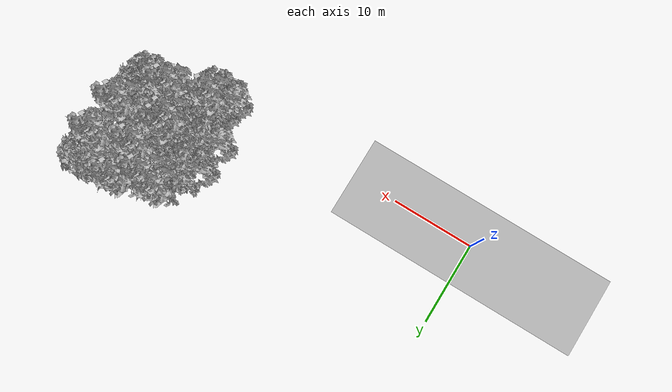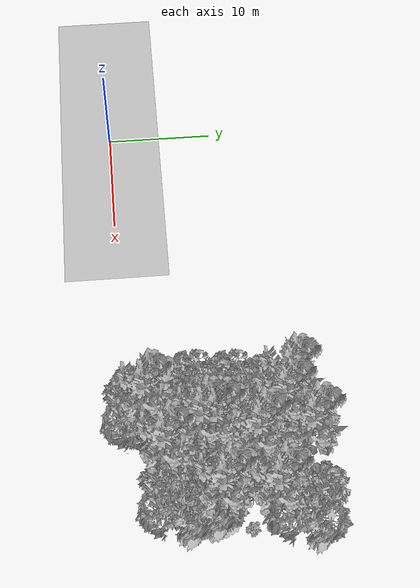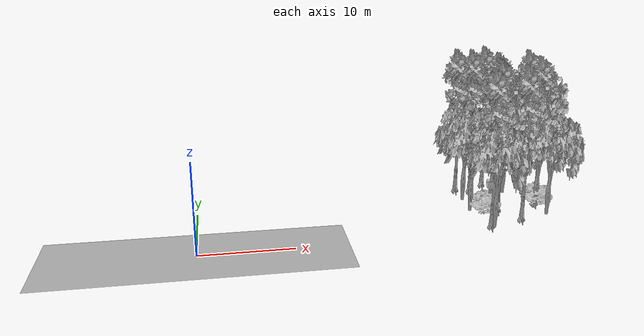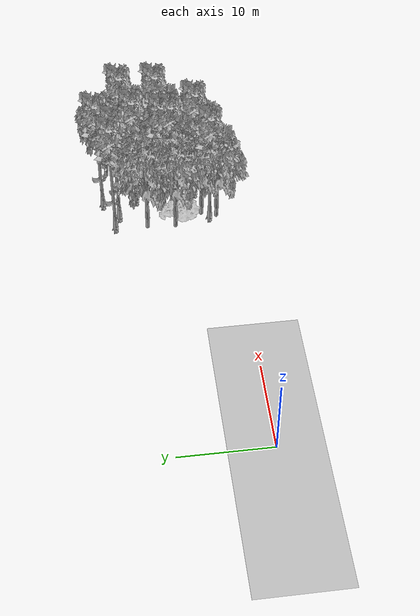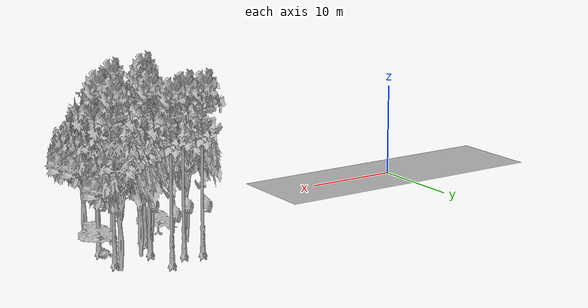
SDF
<sdf version="1.7">
 <world name="default">
  <model name="ground_plane">
   <static>1</static>
   <link name="link">
    <collision name="collision">
     <pose>-50 0 0 0 -0 0</pose>
     <geometry><plane><normal>0 0 1</normal><size>100 100</size></plane></geometry>
     <surface><contact><ode><min_depth>0.01</min_depth><max_vel>0</max_vel></ode></contact></surface>
    </collision>
    <visual name="grass">
     <cast_shadows>0</cast_shadows>
     <geometry>
      <mesh>
       <scale>0.5814285714285714 0.18142857142857144 0.1</scale>
       <uri>file://grass_plane/meshes/grass_plane.dae</uri>
      </mesh>
     </geometry>
    </visual>
   </link>
  </model>
  <model name="Tree 55">
   <static>1</static>
   <pose>38.76825862329257 6.130242010541679 0 1.57079 -0 0</pose>
   <link name="link">
    <collision name="collision">
     <geometry><mesh><scale>3.5 5 3.5</scale><uri>model://tree_2/meshes/tree_2.obj</uri></mesh></geometry>
    </collision>
    <visual name="visual">
     <geometry><mesh><scale>3.5 5 3.5</scale><uri>model://tree_2/meshes/tree_2.obj</uri></mesh></geometry>
    </visual>
   </link>
  </model>
  <model name="Tree 56">
   <static>1</static>
   <pose>39.85740417021182 11.655379444632342 0 1.57079 -0 0</pose>
   <link name="link">
    <collision name="collision">
     <geometry><mesh><scale>3.5 5 3.5</scale><uri>model://tree_9/meshes/tree_9.obj</uri></mesh></geometry>
    </collision>
    <visual name="visual">
     <geometry><mesh><scale>3.5 5 3.5</scale><uri>model://tree_9/meshes/tree_9.obj</uri></mesh></geometry>
    </visual>
   </link>
  </model>
  <model name="Tree 134">
   <static>1</static>
   <pose>32.0561835513881 1.6915817885447346 0 1.57079 -0 0</pose>
   <link name="link">
    <collision name="collision">
     <geometry><mesh><scale>3.5 5 3.5</scale><uri>model://tree_2/meshes/tree_2.obj</uri></mesh></geometry>
    </collision>
    <visual name="visual">
     <geometry><mesh><scale>3.5 5 3.5</scale><uri>model://tree_2/meshes/tree_2.obj</uri></mesh></geometry>
    </visual>
   </link>
  </model>
  <model name="Tree 139">
   <static>1</static>
   <pose>33.291494305657366 12.791173688180784 0 1.57079 -0 0</pose>
   <link name="link">
    <collision name="collision">
     <geometry><mesh><scale>3.5 5 3.5</scale><uri>model://tree_9/meshes/tree_9.obj</uri></mesh></geometry>
    </collision>
    <visual name="visual">
     <geometry><mesh><scale>3.5 5 3.5</scale><uri>model://tree_9/meshes/tree_9.obj</uri></mesh></geometry>
    </visual>
   </link>
  </model>
  <model name="Tree 142">
   <static>1</static>
   <pose>34.456195218511766 6.580893161147376 0 1.57079 -0 0</pose>
   <link name="link">
    <collision name="collision">
     <geometry><mesh><scale>3.5 5 3.5</scale><uri>model://tree_9/meshes/tree_9.obj</uri></mesh></geometry>
    </collision>
    <visual name="visual">
     <geometry><mesh><scale>3.5 5 3.5</scale><uri>model://tree_9/meshes/tree_9.obj</uri></mesh></geometry>
    </visual>
   </link>
  </model>
  <model name="Tree 144">
   <static>1</static>
   <pose>35.52596002934823 14.552836260975237 0 1.57079 -0 0</pose>
   <link name="link">
    <collision name="collision">
     <geometry><mesh><scale>3.5 5 3.5</scale><uri>model://tree_9/meshes/tree_9.obj</uri></mesh></geometry>
    </collision>
    <visual name="visual">
     <geometry><mesh><scale>3.5 5 3.5</scale><uri>model://tree_9/meshes/tree_9.obj</uri></mesh></geometry>
    </visual>
   </link>
  </model>
  <model name="Tree 168">
   <static>1</static>
   <pose>39.11307026242321 7.12239907537257 0 1.57079 -0 0</pose>
   <link name="link">
    <collision name="collision">
     <geometry><mesh><scale>4 2.5 4</scale><uri>model://tree_1/meshes/tree_1.obj</uri></mesh></geometry>
    </collision>
    <visual name="visual">
     <geometry><mesh><scale>4 2.5 4</scale><uri>model://tree_1/meshes/tree_1.obj</uri></mesh></geometry>
    </visual>
   </link>
  </model>
  <model name="Tree 172">
   <static>1</static>
   <pose>39.57211750953273 7.763751077115604 0 1.57079 -0 0</pose>
   <link name="link">
    <collision name="collision">
     <geometry><mesh><scale>3.5 5 3.5</scale><uri>model://tree_9/meshes/tree_9.obj</uri></mesh></geometry>
    </collision>
    <visual name="visual">
     <geometry><mesh><scale>3.5 5 3.5</scale><uri>model://tree_9/meshes/tree_9.obj</uri></mesh></geometry>
    </visual>
   </link>
  </model>
  <model name="Tree 190">
   <static>1</static>
   <pose>35.705312371667816 10.644746256244964 0 1.57079 -0 0</pose>
   <link name="link">
    <collision name="collision">
     <geometry><mesh><scale>3.5 5 3.5</scale><uri>model://tree_9/meshes/tree_9.obj</uri></mesh></geometry>
    </collision>
    <visual name="visual">
     <geometry><mesh><scale>3.5 5 3.5</scale><uri>model://tree_9/meshes/tree_9.obj</uri></mesh></geometry>
    </visual>
   </link>
  </model>
  <model name="Tree 211">
   <static>1</static>
   <pose>31.630133917899343 13.374087245559622 0 1.57079 -0 0</pose>
   <link name="link">
    <collision name="collision">
     <geometry><mesh><scale>3.5 5 3.5</scale><uri>model://tree_9/meshes/tree_9.obj</uri></mesh></geometry>
    </collision>
    <visual name="visual">
     <geometry><mesh><scale>3.5 5 3.5</scale><uri>model://tree_9/meshes/tree_9.obj</uri></mesh></geometry>
    </visual>
   </link>
  </model>
  <model name="Tree 232">
   <static>1</static>
   <pose>31.194889627995025 9.707342183043945 0 1.57079 -0 0</pose>
   <link name="link">
    <collision name="collision">
     <geometry><mesh><scale>3.5 5 3.5</scale><uri>model://tree_2/meshes/tree_2.obj</uri></mesh></geometry>
    </collision>
    <visual name="visual">
     <geometry><mesh><scale>3.5 5 3.5</scale><uri>model://tree_2/meshes/tree_2.obj</uri></mesh></geometry>
    </visual>
   </link>
  </model>
  <model name="Tree 294">
   <static>1</static>
   <pose>36.82829258282817 11.123948222114798 0 1.57079 -0 0</pose>
   <link name="link">
    <collision name="collision">
     <geometry><mesh><scale>3.5 5 3.5</scale><uri>model://tree_2/meshes/tree_2.obj</uri></mesh></geometry>
    </collision>
    <visual name="visual">
     <geometry><mesh><scale>3.5 5 3.5</scale><uri>model://tree_2/meshes/tree_2.obj</uri></mesh></geometry>
    </visual>
   </link>
  </model>
  <model name="Tree 299">
   <static>1</static>
   <pose>30.972207013689058 6.517914159830454 0 1.57079 -0 0</pose>
   <link name="link">
    <collision name="collision">
     <geometry><mesh><scale>3.5 5 3.5</scale><uri>model://tree_2/meshes/tree_2.obj</uri></mesh></geometry>
    </collision>
    <visual name="visual">
     <geometry><mesh><scale>3.5 5 3.5</scale><uri>model://tree_2/meshes/tree_2.obj</uri></mesh></geometry>
    </visual>
   </link>
  </model>
  <model name="Tree 309">
   <static>1</static>
   <pose>39.252714217759774 4.1344571030873105 0 1.57079 -0 0</pose>
   <link name="link">
    <collision name="collision">
     <geometry><mesh><scale>3.5 5 3.5</scale><uri>model://tree_2/meshes/tree_2.obj</uri></mesh></geometry>
    </collision>
    <visual name="visual">
     <geometry><mesh><scale>3.5 5 3.5</scale><uri>model://tree_2/meshes/tree_2.obj</uri></mesh></geometry>
    </visual>
   </link>
  </model>
  <model name="Tree 371">
   <static>1</static>
   <pose>34.58606994548204 7.548027236014217 0 1.57079 -0 0</pose>
   <link name="link">
    <collision name="collision">
     <geometry><mesh><scale>3.5 5 3.5</scale><uri>model://tree_9/meshes/tree_9.obj</uri></mesh></geometry>
    </collision>
    <visual name="visual">
     <geometry><mesh><scale>3.5 5 3.5</scale><uri>model://tree_9/meshes/tree_9.obj</uri></mesh></geometry>
    </visual>
   </link>
  </model>
  <model name="Tree 427">
   <static>1</static>
   <pose>36.157060052134895 3.7201902222975107 0 1.57079 -0 0</pose>
   <link name="link">
    <collision name="collision">
     <geometry><mesh><scale>3.5 5 3.5</scale><uri>model://tree_9/meshes/tree_9.obj</uri></mesh></geometry>
    </collision>
    <visual name="visual">
     <geometry><mesh><scale>3.5 5 3.5</scale><uri>model://tree_9/meshes/tree_9.obj</uri></mesh></geometry>
    </visual>
   </link>
  </model>
  <model name="Tree 440">
   <static>1</static>
   <pose>32.58419760267613 3.3554262588733366 0 1.57079 -0 0</pose>
   <link name="link">
    <collision name="collision">
     <geometry><mesh><scale>3.5 5 3.5</scale><uri>model://tree_2/meshes/tree_2.obj</uri></mesh></geometry>
    </collision>
    <visual name="visual">
     <geometry><mesh><scale>3.5 5 3.5</scale><uri>model://tree_2/meshes/tree_2.obj</uri></mesh></geometry>
    </visual>
   </link>
  </model>
  <model name="Tree 508">
   <static>1</static>
   <pose>32.093087544319246 2.486241305961723 0 1.57079 -0 0</pose>
   <link name="link">
    <collision name="collision">
     <geometry><mesh><scale>3.5 5 3.5</scale><uri>model://tree_9/meshes/tree_9.obj</uri></mesh></geometry>
    </collision>
    <visual name="visual">
     <geometry><mesh><scale>3.5 5 3.5</scale><uri>model://tree_9/meshes/tree_9.obj</uri></mesh></geometry>
    </visual>
   </link>
  </model>
  <model name="Tree 522">
   <static>1</static>
   <pose>34.03034032238271 7.914258466905562 0 1.57079 -0 0</pose>
   <link name="link">
    <collision name="collision">
     <geometry><mesh><scale>3.5 5 3.5</scale><uri>model://tree_2/meshes/tree_2.obj</uri></mesh></geometry>
    </collision>
    <visual name="visual">
     <geometry><mesh><scale>3.5 5 3.5</scale><uri>model://tree_2/meshes/tree_2.obj</uri></mesh></geometry>
    </visual>
   </link>
  </model>
  <model name="Tree 532">
   <static>1</static>
   <pose>40.21992467320116 13.7906535008437 0 1.57079 -0 0</pose>
   <link name="link">
    <collision name="collision">
     <geometry><mesh><scale>3.5 5 3.5</scale><uri>model://tree_2/meshes/tree_2.obj</uri></mesh></geometry>
    </collision>
    <visual name="visual">
     <geometry><mesh><scale>3.5 5 3.5</scale><uri>model://tree_2/meshes/tree_2.obj</uri></mesh></geometry>
    </visual>
   </link>
  </model>
  <model name="Tree 535">
   <static>1</static>
   <pose>32.28055083093575 5.7860609564502035 0 1.57079 -0 0</pose>
   <link name="link">
    <collision name="collision">
     <geometry><mesh><scale>4 2.5 4</scale><uri>model://tree_1/meshes/tree_1.obj</uri></mesh></geometry>
    </collision>
    <visual name="visual">
     <geometry><mesh><scale>4 2.5 4</scale><uri>model://tree_1/meshes/tree_1.obj</uri></mesh></geometry>
    </visual>
   </link>
  </model>
  <model name="Bush 3">
   <static>1</static>
   <pose>40.165639550029255 10.13608337940595 0 1.57079 -0 0</pose>
   <link name="link">
    <collision name="collision">
     <geometry><mesh><scale>2 2 2</scale><uri>model://bush_3/meshes/bush_3.obj</uri></mesh></geometry>
     <surface><contact><collide_without_contact>false</collide_without_contact></contact></surface>
    </collision>
    <visual name="visual">
     <geometry><mesh><scale>2 2 2</scale><uri>model://bush_3/meshes/bush_3.obj</uri></mesh></geometry>
    </visual>
   </link>
  </model>
 </world>
</sdf>
